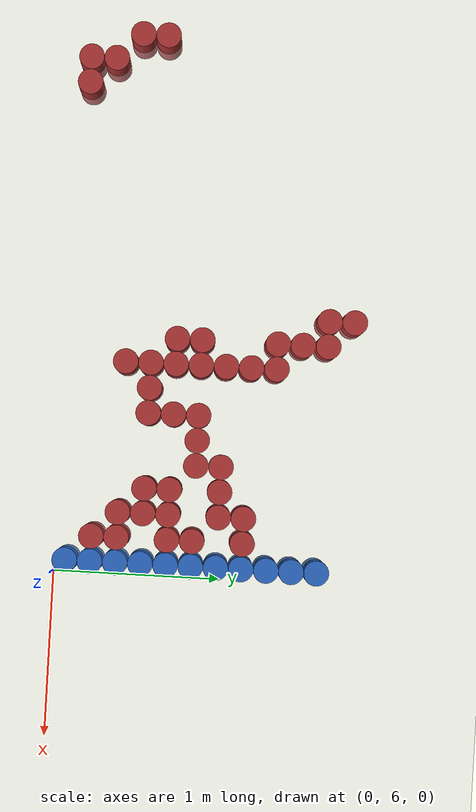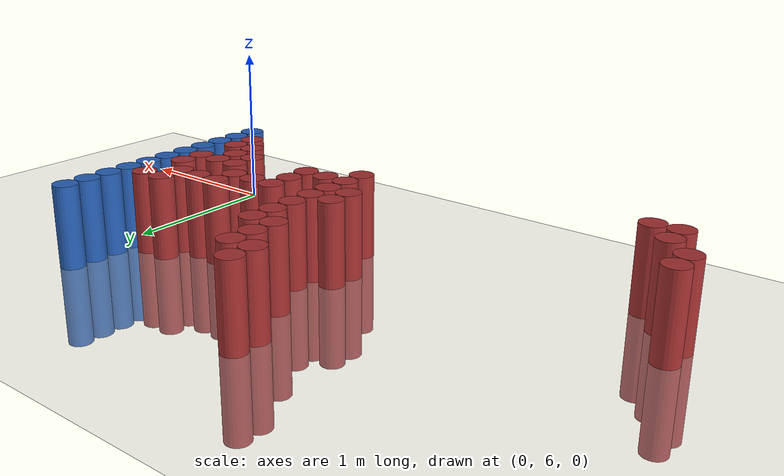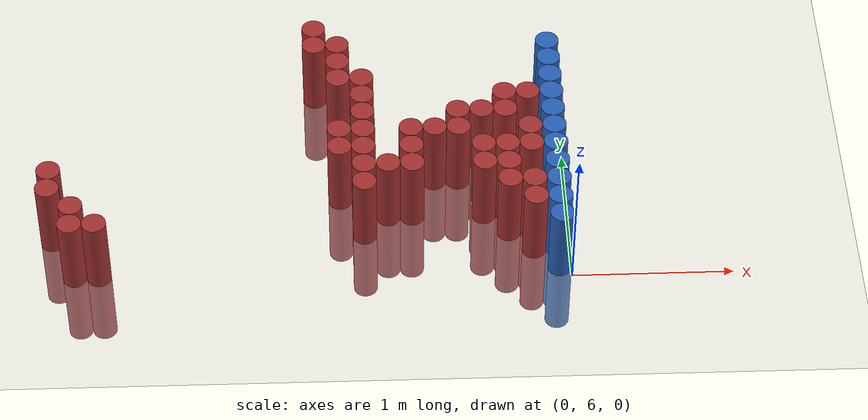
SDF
<sdf version="1.6">
 <world name="default">
  <model name="ground_plane">
   <static>1</static>
   <link name="link">
    <collision name="collision">
     <geometry><plane><normal>0 0 1</normal><size>100 100</size></plane></geometry>
     <surface><friction><ode><mu>100</mu><mu2>50</mu2></ode></friction></surface>
    </collision>
    <visual name="visual">
     <cast_shadows>0</cast_shadows>
     <geometry><plane><normal>0 0 1</normal><size>100 100</size></plane></geometry>
     <material>
      <script><uri>file://media/materials/scripts/gazebo.material</uri><name>Gazebo/Grey</name></script>
     </material>
    </visual>
   </link>
  </model>
  <model name="unit_cylinder_172">
   <static>1</static>
   <pose>-3.225000 6.375000 0.000000 0.000000 0.000000 0.000000</pose>
   <link name="link">
    <inertial>
     <mass>1</mass>
     <inertia><ixx>0.145833</ixx><ixy>0</ixy><ixz>0</ixz><iyy>0.145833</iyy><iyz>0</iyz><izz>0.125</izz></inertia>
    </inertial>
    <collision name="collision">
     <geometry><cylinder><radius>0.075000</radius><length>1</length></cylinder></geometry>
    </collision>
    <visual name="visual">
     <geometry><cylinder><radius>0.075000</radius><length>1</length></cylinder></geometry>
     <material>
      <ambient>0.648000 0.192000 0.192000 1</ambient>
      <diffuse>0.648000 0.192000 0.192000 1</diffuse>
     </material>
     <material>
      <script><name>Gazebo/Grey</name><uri>file://media/materials/scripts/gazebo.material</uri></script>
     </material>
    </visual>
   </link>
  </model>
  <model name="unit_cylinder_173">
   <static>1</static>
   <pose>-3.225000 6.525000 0.000000 0.000000 0.000000 0.000000</pose>
   <link name="link">
    <inertial>
     <mass>1</mass>
     <inertia><ixx>0.145833</ixx><ixy>0</ixy><ixz>0</ixz><iyy>0.145833</iyy><iyz>0</iyz><izz>0.125</izz></inertia>
    </inertial>
    <collision name="collision">
     <geometry><cylinder><radius>0.075000</radius><length>1</length></cylinder></geometry>
    </collision>
    <visual name="visual">
     <geometry><cylinder><radius>0.075000</radius><length>1</length></cylinder></geometry>
     <material>
      <ambient>0.648000 0.192000 0.192000 1</ambient>
      <diffuse>0.648000 0.192000 0.192000 1</diffuse>
     </material>
     <material>
      <script><name>Gazebo/Grey</name><uri>file://media/materials/scripts/gazebo.material</uri></script>
     </material>
    </visual>
   </link>
  </model>
  <model name="unit_cylinder_177">
   <static>1</static>
   <pose>-3.075000 6.075000 0.000000 0.000000 0.000000 0.000000</pose>
   <link name="link">
    <inertial>
     <mass>1</mass>
     <inertia><ixx>0.145833</ixx><ixy>0</ixy><ixz>0</ixz><iyy>0.145833</iyy><iyz>0</iyz><izz>0.125</izz></inertia>
    </inertial>
    <collision name="collision">
     <geometry><cylinder><radius>0.075000</radius><length>1</length></cylinder></geometry>
    </collision>
    <visual name="visual">
     <geometry><cylinder><radius>0.075000</radius><length>1</length></cylinder></geometry>
     <material>
      <ambient>0.648000 0.192000 0.192000 1</ambient>
      <diffuse>0.648000 0.192000 0.192000 1</diffuse>
     </material>
     <material>
      <script><name>Gazebo/Grey</name><uri>file://media/materials/scripts/gazebo.material</uri></script>
     </material>
    </visual>
   </link>
  </model>
  <model name="unit_cylinder_178">
   <static>1</static>
   <pose>-3.075000 6.225000 0.000000 0.000000 0.000000 0.000000</pose>
   <link name="link">
    <inertial>
     <mass>1</mass>
     <inertia><ixx>0.145833</ixx><ixy>0</ixy><ixz>0</ixz><iyy>0.145833</iyy><iyz>0</iyz><izz>0.125</izz></inertia>
    </inertial>
    <collision name="collision">
     <geometry><cylinder><radius>0.075000</radius><length>1</length></cylinder></geometry>
    </collision>
    <visual name="visual">
     <geometry><cylinder><radius>0.075000</radius><length>1</length></cylinder></geometry>
     <material>
      <ambient>0.648000 0.192000 0.192000 1</ambient>
      <diffuse>0.648000 0.192000 0.192000 1</diffuse>
     </material>
     <material>
      <script><name>Gazebo/Grey</name><uri>file://media/materials/scripts/gazebo.material</uri></script>
     </material>
    </visual>
   </link>
  </model>
  <model name="unit_cylinder_179">
   <static>1</static>
   <pose>-2.925000 6.075000 0.000000 0.000000 0.000000 0.000000</pose>
   <link name="link">
    <inertial>
     <mass>1</mass>
     <inertia><ixx>0.145833</ixx><ixy>0</ixy><ixz>0</ixz><iyy>0.145833</iyy><iyz>0</iyz><izz>0.125</izz></inertia>
    </inertial>
    <collision name="collision">
     <geometry><cylinder><radius>0.075000</radius><length>1</length></cylinder></geometry>
    </collision>
    <visual name="visual">
     <geometry><cylinder><radius>0.075000</radius><length>1</length></cylinder></geometry>
     <material>
      <ambient>0.648000 0.192000 0.192000 1</ambient>
      <diffuse>0.648000 0.192000 0.192000 1</diffuse>
     </material>
     <material>
      <script><name>Gazebo/Grey</name><uri>file://media/materials/scripts/gazebo.material</uri></script>
     </material>
    </visual>
   </link>
  </model>
  <model name="unit_cylinder_200">
   <static>1</static>
   <pose>-1.575000 7.575000 0.000000 0.000000 0.000000 0.000000</pose>
   <link name="link">
    <inertial>
     <mass>1</mass>
     <inertia><ixx>0.145833</ixx><ixy>0</ixy><ixz>0</ixz><iyy>0.145833</iyy><iyz>0</iyz><izz>0.125</izz></inertia>
    </inertial>
    <collision name="collision">
     <geometry><cylinder><radius>0.075000</radius><length>1</length></cylinder></geometry>
    </collision>
    <visual name="visual">
     <geometry><cylinder><radius>0.075000</radius><length>1</length></cylinder></geometry>
     <material>
      <ambient>0.648000 0.192000 0.192000 1</ambient>
      <diffuse>0.648000 0.192000 0.192000 1</diffuse>
     </material>
     <material>
      <script><name>Gazebo/Grey</name><uri>file://media/materials/scripts/gazebo.material</uri></script>
     </material>
    </visual>
   </link>
  </model>
  <model name="unit_cylinder_201">
   <static>1</static>
   <pose>-1.575000 7.725000 0.000000 0.000000 0.000000 0.000000</pose>
   <link name="link">
    <inertial>
     <mass>1</mass>
     <inertia><ixx>0.145833</ixx><ixy>0</ixy><ixz>0</ixz><iyy>0.145833</iyy><iyz>0</iyz><izz>0.125</izz></inertia>
    </inertial>
    <collision name="collision">
     <geometry><cylinder><radius>0.075000</radius><length>1</length></cylinder></geometry>
    </collision>
    <visual name="visual">
     <geometry><cylinder><radius>0.075000</radius><length>1</length></cylinder></geometry>
     <material>
      <ambient>0.648000 0.192000 0.192000 1</ambient>
      <diffuse>0.648000 0.192000 0.192000 1</diffuse>
     </material>
     <material>
      <script><name>Gazebo/Grey</name><uri>file://media/materials/scripts/gazebo.material</uri></script>
     </material>
    </visual>
   </link>
  </model>
  <model name="unit_cylinder_206">
   <static>1</static>
   <pose>-1.425000 6.675000 0.000000 0.000000 0.000000 0.000000</pose>
   <link name="link">
    <inertial>
     <mass>1</mass>
     <inertia><ixx>0.145833</ixx><ixy>0</ixy><ixz>0</ixz><iyy>0.145833</iyy><iyz>0</iyz><izz>0.125</izz></inertia>
    </inertial>
    <collision name="collision">
     <geometry><cylinder><radius>0.075000</radius><length>1</length></cylinder></geometry>
    </collision>
    <visual name="visual">
     <geometry><cylinder><radius>0.075000</radius><length>1</length></cylinder></geometry>
     <material>
      <ambient>0.648000 0.192000 0.192000 1</ambient>
      <diffuse>0.648000 0.192000 0.192000 1</diffuse>
     </material>
     <material>
      <script><name>Gazebo/Grey</name><uri>file://media/materials/scripts/gazebo.material</uri></script>
     </material>
    </visual>
   </link>
  </model>
  <model name="unit_cylinder_207">
   <static>1</static>
   <pose>-1.425000 6.825000 0.000000 0.000000 0.000000 0.000000</pose>
   <link name="link">
    <inertial>
     <mass>1</mass>
     <inertia><ixx>0.145833</ixx><ixy>0</ixy><ixz>0</ixz><iyy>0.145833</iyy><iyz>0</iyz><izz>0.125</izz></inertia>
    </inertial>
    <collision name="collision">
     <geometry><cylinder><radius>0.075000</radius><length>1</length></cylinder></geometry>
    </collision>
    <visual name="visual">
     <geometry><cylinder><radius>0.075000</radius><length>1</length></cylinder></geometry>
     <material>
      <ambient>0.648000 0.192000 0.192000 1</ambient>
      <diffuse>0.648000 0.192000 0.192000 1</diffuse>
     </material>
     <material>
      <script><name>Gazebo/Grey</name><uri>file://media/materials/scripts/gazebo.material</uri></script>
     </material>
    </visual>
   </link>
  </model>
  <model name="unit_cylinder_208">
   <static>1</static>
   <pose>-1.425000 7.275000 0.000000 0.000000 0.000000 0.000000</pose>
   <link name="link">
    <inertial>
     <mass>1</mass>
     <inertia><ixx>0.145833</ixx><ixy>0</ixy><ixz>0</ixz><iyy>0.145833</iyy><iyz>0</iyz><izz>0.125</izz></inertia>
    </inertial>
    <collision name="collision">
     <geometry><cylinder><radius>0.075000</radius><length>1</length></cylinder></geometry>
    </collision>
    <visual name="visual">
     <geometry><cylinder><radius>0.075000</radius><length>1</length></cylinder></geometry>
     <material>
      <ambient>0.648000 0.192000 0.192000 1</ambient>
      <diffuse>0.648000 0.192000 0.192000 1</diffuse>
     </material>
     <material>
      <script><name>Gazebo/Grey</name><uri>file://media/materials/scripts/gazebo.material</uri></script>
     </material>
    </visual>
   </link>
  </model>
  <model name="unit_cylinder_209">
   <static>1</static>
   <pose>-1.425000 7.425000 0.000000 0.000000 0.000000 0.000000</pose>
   <link name="link">
    <inertial>
     <mass>1</mass>
     <inertia><ixx>0.145833</ixx><ixy>0</ixy><ixz>0</ixz><iyy>0.145833</iyy><iyz>0</iyz><izz>0.125</izz></inertia>
    </inertial>
    <collision name="collision">
     <geometry><cylinder><radius>0.075000</radius><length>1</length></cylinder></geometry>
    </collision>
    <visual name="visual">
     <geometry><cylinder><radius>0.075000</radius><length>1</length></cylinder></geometry>
     <material>
      <ambient>0.648000 0.192000 0.192000 1</ambient>
      <diffuse>0.648000 0.192000 0.192000 1</diffuse>
     </material>
     <material>
      <script><name>Gazebo/Grey</name><uri>file://media/materials/scripts/gazebo.material</uri></script>
     </material>
    </visual>
   </link>
  </model>
  <model name="unit_cylinder_210">
   <static>1</static>
   <pose>-1.425000 7.575000 0.000000 0.000000 0.000000 0.000000</pose>
   <link name="link">
    <inertial>
     <mass>1</mass>
     <inertia><ixx>0.145833</ixx><ixy>0</ixy><ixz>0</ixz><iyy>0.145833</iyy><iyz>0</iyz><izz>0.125</izz></inertia>
    </inertial>
    <collision name="collision">
     <geometry><cylinder><radius>0.075000</radius><length>1</length></cylinder></geometry>
    </collision>
    <visual name="visual">
     <geometry><cylinder><radius>0.075000</radius><length>1</length></cylinder></geometry>
     <material>
      <ambient>0.648000 0.192000 0.192000 1</ambient>
      <diffuse>0.648000 0.192000 0.192000 1</diffuse>
     </material>
     <material>
      <script><name>Gazebo/Grey</name><uri>file://media/materials/scripts/gazebo.material</uri></script>
     </material>
    </visual>
   </link>
  </model>
  <model name="unit_cylinder_217">
   <static>1</static>
   <pose>-1.275000 6.375000 0.000000 0.000000 0.000000 0.000000</pose>
   <link name="link">
    <inertial>
     <mass>1</mass>
     <inertia><ixx>0.145833</ixx><ixy>0</ixy><ixz>0</ixz><iyy>0.145833</iyy><iyz>0</iyz><izz>0.125</izz></inertia>
    </inertial>
    <collision name="collision">
     <geometry><cylinder><radius>0.075000</radius><length>1</length></cylinder></geometry>
    </collision>
    <visual name="visual">
     <geometry><cylinder><radius>0.075000</radius><length>1</length></cylinder></geometry>
     <material>
      <ambient>0.648000 0.192000 0.192000 1</ambient>
      <diffuse>0.648000 0.192000 0.192000 1</diffuse>
     </material>
     <material>
      <script><name>Gazebo/Grey</name><uri>file://media/materials/scripts/gazebo.material</uri></script>
     </material>
    </visual>
   </link>
  </model>
  <model name="unit_cylinder_218">
   <static>1</static>
   <pose>-1.275000 6.525000 0.000000 0.000000 0.000000 0.000000</pose>
   <link name="link">
    <inertial>
     <mass>1</mass>
     <inertia><ixx>0.145833</ixx><ixy>0</ixy><ixz>0</ixz><iyy>0.145833</iyy><iyz>0</iyz><izz>0.125</izz></inertia>
    </inertial>
    <collision name="collision">
     <geometry><cylinder><radius>0.075000</radius><length>1</length></cylinder></geometry>
    </collision>
    <visual name="visual">
     <geometry><cylinder><radius>0.075000</radius><length>1</length></cylinder></geometry>
     <material>
      <ambient>0.648000 0.192000 0.192000 1</ambient>
      <diffuse>0.648000 0.192000 0.192000 1</diffuse>
     </material>
     <material>
      <script><name>Gazebo/Grey</name><uri>file://media/materials/scripts/gazebo.material</uri></script>
     </material>
    </visual>
   </link>
  </model>
  <model name="unit_cylinder_219">
   <static>1</static>
   <pose>-1.275000 6.675000 0.000000 0.000000 0.000000 0.000000</pose>
   <link name="link">
    <inertial>
     <mass>1</mass>
     <inertia><ixx>0.145833</ixx><ixy>0</ixy><ixz>0</ixz><iyy>0.145833</iyy><iyz>0</iyz><izz>0.125</izz></inertia>
    </inertial>
    <collision name="collision">
     <geometry><cylinder><radius>0.075000</radius><length>1</length></cylinder></geometry>
    </collision>
    <visual name="visual">
     <geometry><cylinder><radius>0.075000</radius><length>1</length></cylinder></geometry>
     <material>
      <ambient>0.648000 0.192000 0.192000 1</ambient>
      <diffuse>0.648000 0.192000 0.192000 1</diffuse>
     </material>
     <material>
      <script><name>Gazebo/Grey</name><uri>file://media/materials/scripts/gazebo.material</uri></script>
     </material>
    </visual>
   </link>
  </model>
  <model name="unit_cylinder_220">
   <static>1</static>
   <pose>-1.275000 6.825000 0.000000 0.000000 0.000000 0.000000</pose>
   <link name="link">
    <inertial>
     <mass>1</mass>
     <inertia><ixx>0.145833</ixx><ixy>0</ixy><ixz>0</ixz><iyy>0.145833</iyy><iyz>0</iyz><izz>0.125</izz></inertia>
    </inertial>
    <collision name="collision">
     <geometry><cylinder><radius>0.075000</radius><length>1</length></cylinder></geometry>
    </collision>
    <visual name="visual">
     <geometry><cylinder><radius>0.075000</radius><length>1</length></cylinder></geometry>
     <material>
      <ambient>0.648000 0.192000 0.192000 1</ambient>
      <diffuse>0.648000 0.192000 0.192000 1</diffuse>
     </material>
     <material>
      <script><name>Gazebo/Grey</name><uri>file://media/materials/scripts/gazebo.material</uri></script>
     </material>
    </visual>
   </link>
  </model>
  <model name="unit_cylinder_221">
   <static>1</static>
   <pose>-1.275000 6.975000 0.000000 0.000000 0.000000 0.000000</pose>
   <link name="link">
    <inertial>
     <mass>1</mass>
     <inertia><ixx>0.145833</ixx><ixy>0</ixy><ixz>0</ixz><iyy>0.145833</iyy><iyz>0</iyz><izz>0.125</izz></inertia>
    </inertial>
    <collision name="collision">
     <geometry><cylinder><radius>0.075000</radius><length>1</length></cylinder></geometry>
    </collision>
    <visual name="visual">
     <geometry><cylinder><radius>0.075000</radius><length>1</length></cylinder></geometry>
     <material>
      <ambient>0.648000 0.192000 0.192000 1</ambient>
      <diffuse>0.648000 0.192000 0.192000 1</diffuse>
     </material>
     <material>
      <script><name>Gazebo/Grey</name><uri>file://media/materials/scripts/gazebo.material</uri></script>
     </material>
    </visual>
   </link>
  </model>
  <model name="unit_cylinder_222">
   <static>1</static>
   <pose>-1.275000 7.125000 0.000000 0.000000 0.000000 0.000000</pose>
   <link name="link">
    <inertial>
     <mass>1</mass>
     <inertia><ixx>0.145833</ixx><ixy>0</ixy><ixz>0</ixz><iyy>0.145833</iyy><iyz>0</iyz><izz>0.125</izz></inertia>
    </inertial>
    <collision name="collision">
     <geometry><cylinder><radius>0.075000</radius><length>1</length></cylinder></geometry>
    </collision>
    <visual name="visual">
     <geometry><cylinder><radius>0.075000</radius><length>1</length></cylinder></geometry>
     <material>
      <ambient>0.648000 0.192000 0.192000 1</ambient>
      <diffuse>0.648000 0.192000 0.192000 1</diffuse>
     </material>
     <material>
      <script><name>Gazebo/Grey</name><uri>file://media/materials/scripts/gazebo.material</uri></script>
     </material>
    </visual>
   </link>
  </model>
  <model name="unit_cylinder_223">
   <static>1</static>
   <pose>-1.275000 7.275000 0.000000 0.000000 0.000000 0.000000</pose>
   <link name="link">
    <inertial>
     <mass>1</mass>
     <inertia><ixx>0.145833</ixx><ixy>0</ixy><ixz>0</ixz><iyy>0.145833</iyy><iyz>0</iyz><izz>0.125</izz></inertia>
    </inertial>
    <collision name="collision">
     <geometry><cylinder><radius>0.075000</radius><length>1</length></cylinder></geometry>
    </collision>
    <visual name="visual">
     <geometry><cylinder><radius>0.075000</radius><length>1</length></cylinder></geometry>
     <material>
      <ambient>0.648000 0.192000 0.192000 1</ambient>
      <diffuse>0.648000 0.192000 0.192000 1</diffuse>
     </material>
     <material>
      <script><name>Gazebo/Grey</name><uri>file://media/materials/scripts/gazebo.material</uri></script>
     </material>
    </visual>
   </link>
  </model>
  <model name="unit_cylinder_229">
   <static>1</static>
   <pose>-1.125000 6.525000 0.000000 0.000000 0.000000 0.000000</pose>
   <link name="link">
    <inertial>
     <mass>1</mass>
     <inertia><ixx>0.145833</ixx><ixy>0</ixy><ixz>0</ixz><iyy>0.145833</iyy><iyz>0</iyz><izz>0.125</izz></inertia>
    </inertial>
    <collision name="collision">
     <geometry><cylinder><radius>0.075000</radius><length>1</length></cylinder></geometry>
    </collision>
    <visual name="visual">
     <geometry><cylinder><radius>0.075000</radius><length>1</length></cylinder></geometry>
     <material>
      <ambient>0.648000 0.192000 0.192000 1</ambient>
      <diffuse>0.648000 0.192000 0.192000 1</diffuse>
     </material>
     <material>
      <script><name>Gazebo/Grey</name><uri>file://media/materials/scripts/gazebo.material</uri></script>
     </material>
    </visual>
   </link>
  </model>
  <model name="unit_cylinder_234">
   <static>1</static>
   <pose>-0.975000 6.525000 0.000000 0.000000 0.000000 0.000000</pose>
   <link name="link">
    <inertial>
     <mass>1</mass>
     <inertia><ixx>0.145833</ixx><ixy>0</ixy><ixz>0</ixz><iyy>0.145833</iyy><iyz>0</iyz><izz>0.125</izz></inertia>
    </inertial>
    <collision name="collision">
     <geometry><cylinder><radius>0.075000</radius><length>1</length></cylinder></geometry>
    </collision>
    <visual name="visual">
     <geometry><cylinder><radius>0.075000</radius><length>1</length></cylinder></geometry>
     <material>
      <ambient>0.648000 0.192000 0.192000 1</ambient>
      <diffuse>0.648000 0.192000 0.192000 1</diffuse>
     </material>
     <material>
      <script><name>Gazebo/Grey</name><uri>file://media/materials/scripts/gazebo.material</uri></script>
     </material>
    </visual>
   </link>
  </model>
  <model name="unit_cylinder_235">
   <static>1</static>
   <pose>-0.975000 6.675000 0.000000 0.000000 0.000000 0.000000</pose>
   <link name="link">
    <inertial>
     <mass>1</mass>
     <inertia><ixx>0.145833</ixx><ixy>0</ixy><ixz>0</ixz><iyy>0.145833</iyy><iyz>0</iyz><izz>0.125</izz></inertia>
    </inertial>
    <collision name="collision">
     <geometry><cylinder><radius>0.075000</radius><length>1</length></cylinder></geometry>
    </collision>
    <visual name="visual">
     <geometry><cylinder><radius>0.075000</radius><length>1</length></cylinder></geometry>
     <material>
      <ambient>0.648000 0.192000 0.192000 1</ambient>
      <diffuse>0.648000 0.192000 0.192000 1</diffuse>
     </material>
     <material>
      <script><name>Gazebo/Grey</name><uri>file://media/materials/scripts/gazebo.material</uri></script>
     </material>
    </visual>
   </link>
  </model>
  <model name="unit_cylinder_236">
   <static>1</static>
   <pose>-0.975000 6.825000 0.000000 0.000000 0.000000 0.000000</pose>
   <link name="link">
    <inertial>
     <mass>1</mass>
     <inertia><ixx>0.145833</ixx><ixy>0</ixy><ixz>0</ixz><iyy>0.145833</iyy><iyz>0</iyz><izz>0.125</izz></inertia>
    </inertial>
    <collision name="collision">
     <geometry><cylinder><radius>0.075000</radius><length>1</length></cylinder></geometry>
    </collision>
    <visual name="visual">
     <geometry><cylinder><radius>0.075000</radius><length>1</length></cylinder></geometry>
     <material>
      <ambient>0.648000 0.192000 0.192000 1</ambient>
      <diffuse>0.648000 0.192000 0.192000 1</diffuse>
     </material>
     <material>
      <script><name>Gazebo/Grey</name><uri>file://media/materials/scripts/gazebo.material</uri></script>
     </material>
    </visual>
   </link>
  </model>
  <model name="unit_cylinder_241">
   <static>1</static>
   <pose>-0.825000 6.825000 0.000000 0.000000 0.000000 0.000000</pose>
   <link name="link">
    <inertial>
     <mass>1</mass>
     <inertia><ixx>0.145833</ixx><ixy>0</ixy><ixz>0</ixz><iyy>0.145833</iyy><iyz>0</iyz><izz>0.125</izz></inertia>
    </inertial>
    <collision name="collision">
     <geometry><cylinder><radius>0.075000</radius><length>1</length></cylinder></geometry>
    </collision>
    <visual name="visual">
     <geometry><cylinder><radius>0.075000</radius><length>1</length></cylinder></geometry>
     <material>
      <ambient>0.648000 0.192000 0.192000 1</ambient>
      <diffuse>0.648000 0.192000 0.192000 1</diffuse>
     </material>
     <material>
      <script><name>Gazebo/Grey</name><uri>file://media/materials/scripts/gazebo.material</uri></script>
     </material>
    </visual>
   </link>
  </model>
  <model name="unit_cylinder_247">
   <static>1</static>
   <pose>-0.675000 6.825000 0.000000 0.000000 0.000000 0.000000</pose>
   <link name="link">
    <inertial>
     <mass>1</mass>
     <inertia><ixx>0.145833</ixx><ixy>0</ixy><ixz>0</ixz><iyy>0.145833</iyy><iyz>0</iyz><izz>0.125</izz></inertia>
    </inertial>
    <collision name="collision">
     <geometry><cylinder><radius>0.075000</radius><length>1</length></cylinder></geometry>
    </collision>
    <visual name="visual">
     <geometry><cylinder><radius>0.075000</radius><length>1</length></cylinder></geometry>
     <material>
      <ambient>0.648000 0.192000 0.192000 1</ambient>
      <diffuse>0.648000 0.192000 0.192000 1</diffuse>
     </material>
     <material>
      <script><name>Gazebo/Grey</name><uri>file://media/materials/scripts/gazebo.material</uri></script>
     </material>
    </visual>
   </link>
  </model>
  <model name="unit_cylinder_248">
   <static>1</static>
   <pose>-0.675000 6.975000 0.000000 0.000000 0.000000 0.000000</pose>
   <link name="link">
    <inertial>
     <mass>1</mass>
     <inertia><ixx>0.145833</ixx><ixy>0</ixy><ixz>0</ixz><iyy>0.145833</iyy><iyz>0</iyz><izz>0.125</izz></inertia>
    </inertial>
    <collision name="collision">
     <geometry><cylinder><radius>0.075000</radius><length>1</length></cylinder></geometry>
    </collision>
    <visual name="visual">
     <geometry><cylinder><radius>0.075000</radius><length>1</length></cylinder></geometry>
     <material>
      <ambient>0.648000 0.192000 0.192000 1</ambient>
      <diffuse>0.648000 0.192000 0.192000 1</diffuse>
     </material>
     <material>
      <script><name>Gazebo/Grey</name><uri>file://media/materials/scripts/gazebo.material</uri></script>
     </material>
    </visual>
   </link>
  </model>
  <model name="unit_cylinder_255">
   <static>1</static>
   <pose>-0.525000 6.525000 0.000000 0.000000 0.000000 0.000000</pose>
   <link name="link">
    <inertial>
     <mass>1</mass>
     <inertia><ixx>0.145833</ixx><ixy>0</ixy><ixz>0</ixz><iyy>0.145833</iyy><iyz>0</iyz><izz>0.125</izz></inertia>
    </inertial>
    <collision name="collision">
     <geometry><cylinder><radius>0.075000</radius><length>1</length></cylinder></geometry>
    </collision>
    <visual name="visual">
     <geometry><cylinder><radius>0.075000</radius><length>1</length></cylinder></geometry>
     <material>
      <ambient>0.648000 0.192000 0.192000 1</ambient>
      <diffuse>0.648000 0.192000 0.192000 1</diffuse>
     </material>
     <material>
      <script><name>Gazebo/Grey</name><uri>file://media/materials/scripts/gazebo.material</uri></script>
     </material>
    </visual>
   </link>
  </model>
  <model name="unit_cylinder_256">
   <static>1</static>
   <pose>-0.525000 6.675000 0.000000 0.000000 0.000000 0.000000</pose>
   <link name="link">
    <inertial>
     <mass>1</mass>
     <inertia><ixx>0.145833</ixx><ixy>0</ixy><ixz>0</ixz><iyy>0.145833</iyy><iyz>0</iyz><izz>0.125</izz></inertia>
    </inertial>
    <collision name="collision">
     <geometry><cylinder><radius>0.075000</radius><length>1</length></cylinder></geometry>
    </collision>
    <visual name="visual">
     <geometry><cylinder><radius>0.075000</radius><length>1</length></cylinder></geometry>
     <material>
      <ambient>0.648000 0.192000 0.192000 1</ambient>
      <diffuse>0.648000 0.192000 0.192000 1</diffuse>
     </material>
     <material>
      <script><name>Gazebo/Grey</name><uri>file://media/materials/scripts/gazebo.material</uri></script>
     </material>
    </visual>
   </link>
  </model>
  <model name="unit_cylinder_257">
   <static>1</static>
   <pose>-0.525000 6.975000 0.000000 0.000000 0.000000 0.000000</pose>
   <link name="link">
    <inertial>
     <mass>1</mass>
     <inertia><ixx>0.145833</ixx><ixy>0</ixy><ixz>0</ixz><iyy>0.145833</iyy><iyz>0</iyz><izz>0.125</izz></inertia>
    </inertial>
    <collision name="collision">
     <geometry><cylinder><radius>0.075000</radius><length>1</length></cylinder></geometry>
    </collision>
    <visual name="visual">
     <geometry><cylinder><radius>0.075000</radius><length>1</length></cylinder></geometry>
     <material>
      <ambient>0.648000 0.192000 0.192000 1</ambient>
      <diffuse>0.648000 0.192000 0.192000 1</diffuse>
     </material>
     <material>
      <script><name>Gazebo/Grey</name><uri>file://media/materials/scripts/gazebo.material</uri></script>
     </material>
    </visual>
   </link>
  </model>
  <model name="unit_cylinder_261">
   <static>1</static>
   <pose>-0.375000 6.375000 0.000000 0.000000 0.000000 0.000000</pose>
   <link name="link">
    <inertial>
     <mass>1</mass>
     <inertia><ixx>0.145833</ixx><ixy>0</ixy><ixz>0</ixz><iyy>0.145833</iyy><iyz>0</iyz><izz>0.125</izz></inertia>
    </inertial>
    <collision name="collision">
     <geometry><cylinder><radius>0.075000</radius><length>1</length></cylinder></geometry>
    </collision>
    <visual name="visual">
     <geometry><cylinder><radius>0.075000</radius><length>1</length></cylinder></geometry>
     <material>
      <ambient>0.648000 0.192000 0.192000 1</ambient>
      <diffuse>0.648000 0.192000 0.192000 1</diffuse>
     </material>
     <material>
      <script><name>Gazebo/Grey</name><uri>file://media/materials/scripts/gazebo.material</uri></script>
     </material>
    </visual>
   </link>
  </model>
  <model name="unit_cylinder_262">
   <static>1</static>
   <pose>-0.375000 6.525000 0.000000 0.000000 0.000000 0.000000</pose>
   <link name="link">
    <inertial>
     <mass>1</mass>
     <inertia><ixx>0.145833</ixx><ixy>0</ixy><ixz>0</ixz><iyy>0.145833</iyy><iyz>0</iyz><izz>0.125</izz></inertia>
    </inertial>
    <collision name="collision">
     <geometry><cylinder><radius>0.075000</radius><length>1</length></cylinder></geometry>
    </collision>
    <visual name="visual">
     <geometry><cylinder><radius>0.075000</radius><length>1</length></cylinder></geometry>
     <material>
      <ambient>0.648000 0.192000 0.192000 1</ambient>
      <diffuse>0.648000 0.192000 0.192000 1</diffuse>
     </material>
     <material>
      <script><name>Gazebo/Grey</name><uri>file://media/materials/scripts/gazebo.material</uri></script>
     </material>
    </visual>
   </link>
  </model>
  <model name="unit_cylinder_263">
   <static>1</static>
   <pose>-0.375000 6.675000 0.000000 0.000000 0.000000 0.000000</pose>
   <link name="link">
    <inertial>
     <mass>1</mass>
     <inertia><ixx>0.145833</ixx><ixy>0</ixy><ixz>0</ixz><iyy>0.145833</iyy><iyz>0</iyz><izz>0.125</izz></inertia>
    </inertial>
    <collision name="collision">
     <geometry><cylinder><radius>0.075000</radius><length>1</length></cylinder></geometry>
    </collision>
    <visual name="visual">
     <geometry><cylinder><radius>0.075000</radius><length>1</length></cylinder></geometry>
     <material>
      <ambient>0.648000 0.192000 0.192000 1</ambient>
      <diffuse>0.648000 0.192000 0.192000 1</diffuse>
     </material>
     <material>
      <script><name>Gazebo/Grey</name><uri>file://media/materials/scripts/gazebo.material</uri></script>
     </material>
    </visual>
   </link>
  </model>
  <model name="unit_cylinder_264">
   <static>1</static>
   <pose>-0.375000 6.975000 0.000000 0.000000 0.000000 0.000000</pose>
   <link name="link">
    <inertial>
     <mass>1</mass>
     <inertia><ixx>0.145833</ixx><ixy>0</ixy><ixz>0</ixz><iyy>0.145833</iyy><iyz>0</iyz><izz>0.125</izz></inertia>
    </inertial>
    <collision name="collision">
     <geometry><cylinder><radius>0.075000</radius><length>1</length></cylinder></geometry>
    </collision>
    <visual name="visual">
     <geometry><cylinder><radius>0.075000</radius><length>1</length></cylinder></geometry>
     <material>
      <ambient>0.648000 0.192000 0.192000 1</ambient>
      <diffuse>0.648000 0.192000 0.192000 1</diffuse>
     </material>
     <material>
      <script><name>Gazebo/Grey</name><uri>file://media/materials/scripts/gazebo.material</uri></script>
     </material>
    </visual>
   </link>
  </model>
  <model name="unit_cylinder_265">
   <static>1</static>
   <pose>-0.375000 7.125000 0.000000 0.000000 0.000000 0.000000</pose>
   <link name="link">
    <inertial>
     <mass>1</mass>
     <inertia><ixx>0.145833</ixx><ixy>0</ixy><ixz>0</ixz><iyy>0.145833</iyy><iyz>0</iyz><izz>0.125</izz></inertia>
    </inertial>
    <collision name="collision">
     <geometry><cylinder><radius>0.075000</radius><length>1</length></cylinder></geometry>
    </collision>
    <visual name="visual">
     <geometry><cylinder><radius>0.075000</radius><length>1</length></cylinder></geometry>
     <material>
      <ambient>0.648000 0.192000 0.192000 1</ambient>
      <diffuse>0.648000 0.192000 0.192000 1</diffuse>
     </material>
     <material>
      <script><name>Gazebo/Grey</name><uri>file://media/materials/scripts/gazebo.material</uri></script>
     </material>
    </visual>
   </link>
  </model>
  <model name="unit_cylinder_268">
   <static>1</static>
   <pose>-0.225000 6.225000 0.000000 0.000000 0.000000 0.000000</pose>
   <link name="link">
    <inertial>
     <mass>1</mass>
     <inertia><ixx>0.145833</ixx><ixy>0</ixy><ixz>0</ixz><iyy>0.145833</iyy><iyz>0</iyz><izz>0.125</izz></inertia>
    </inertial>
    <collision name="collision">
     <geometry><cylinder><radius>0.075000</radius><length>1</length></cylinder></geometry>
    </collision>
    <visual name="visual">
     <geometry><cylinder><radius>0.075000</radius><length>1</length></cylinder></geometry>
     <material>
      <ambient>0.648000 0.192000 0.192000 1</ambient>
      <diffuse>0.648000 0.192000 0.192000 1</diffuse>
     </material>
     <material>
      <script><name>Gazebo/Grey</name><uri>file://media/materials/scripts/gazebo.material</uri></script>
     </material>
    </visual>
   </link>
  </model>
  <model name="unit_cylinder_269">
   <static>1</static>
   <pose>-0.225000 6.375000 0.000000 0.000000 0.000000 0.000000</pose>
   <link name="link">
    <inertial>
     <mass>1</mass>
     <inertia><ixx>0.145833</ixx><ixy>0</ixy><ixz>0</ixz><iyy>0.145833</iyy><iyz>0</iyz><izz>0.125</izz></inertia>
    </inertial>
    <collision name="collision">
     <geometry><cylinder><radius>0.075000</radius><length>1</length></cylinder></geometry>
    </collision>
    <visual name="visual">
     <geometry><cylinder><radius>0.075000</radius><length>1</length></cylinder></geometry>
     <material>
      <ambient>0.648000 0.192000 0.192000 1</ambient>
      <diffuse>0.648000 0.192000 0.192000 1</diffuse>
     </material>
     <material>
      <script><name>Gazebo/Grey</name><uri>file://media/materials/scripts/gazebo.material</uri></script>
     </material>
    </visual>
   </link>
  </model>
  <model name="unit_cylinder_270">
   <static>1</static>
   <pose>-0.225000 6.675000 0.000000 0.000000 0.000000 0.000000</pose>
   <link name="link">
    <inertial>
     <mass>1</mass>
     <inertia><ixx>0.145833</ixx><ixy>0</ixy><ixz>0</ixz><iyy>0.145833</iyy><iyz>0</iyz><izz>0.125</izz></inertia>
    </inertial>
    <collision name="collision">
     <geometry><cylinder><radius>0.075000</radius><length>1</length></cylinder></geometry>
    </collision>
    <visual name="visual">
     <geometry><cylinder><radius>0.075000</radius><length>1</length></cylinder></geometry>
     <material>
      <ambient>0.648000 0.192000 0.192000 1</ambient>
      <diffuse>0.648000 0.192000 0.192000 1</diffuse>
     </material>
     <material>
      <script><name>Gazebo/Grey</name><uri>file://media/materials/scripts/gazebo.material</uri></script>
     </material>
    </visual>
   </link>
  </model>
  <model name="unit_cylinder_271">
   <static>1</static>
   <pose>-0.225000 6.825000 0.000000 0.000000 0.000000 0.000000</pose>
   <link name="link">
    <inertial>
     <mass>1</mass>
     <inertia><ixx>0.145833</ixx><ixy>0</ixy><ixz>0</ixz><iyy>0.145833</iyy><iyz>0</iyz><izz>0.125</izz></inertia>
    </inertial>
    <collision name="collision">
     <geometry><cylinder><radius>0.075000</radius><length>1</length></cylinder></geometry>
    </collision>
    <visual name="visual">
     <geometry><cylinder><radius>0.075000</radius><length>1</length></cylinder></geometry>
     <material>
      <ambient>0.648000 0.192000 0.192000 1</ambient>
      <diffuse>0.648000 0.192000 0.192000 1</diffuse>
     </material>
     <material>
      <script><name>Gazebo/Grey</name><uri>file://media/materials/scripts/gazebo.material</uri></script>
     </material>
    </visual>
   </link>
  </model>
  <model name="unit_cylinder_272">
   <static>1</static>
   <pose>-0.225000 7.125000 0.000000 0.000000 0.000000 0.000000</pose>
   <link name="link">
    <inertial>
     <mass>1</mass>
     <inertia><ixx>0.145833</ixx><ixy>0</ixy><ixz>0</ixz><iyy>0.145833</iyy><iyz>0</iyz><izz>0.125</izz></inertia>
    </inertial>
    <collision name="collision">
     <geometry><cylinder><radius>0.075000</radius><length>1</length></cylinder></geometry>
    </collision>
    <visual name="visual">
     <geometry><cylinder><radius>0.075000</radius><length>1</length></cylinder></geometry>
     <material>
      <ambient>0.648000 0.192000 0.192000 1</ambient>
      <diffuse>0.648000 0.192000 0.192000 1</diffuse>
     </material>
     <material>
      <script><name>Gazebo/Grey</name><uri>file://media/materials/scripts/gazebo.material</uri></script>
     </material>
    </visual>
   </link>
  </model>
  <model name="unit_cylinder_281">
   <static>1</static>
   <pose>-0.075000 6.075000 0.000000 0.000000 0.000000 0.000000</pose>
   <link name="link">
    <inertial>
     <mass>1</mass>
     <inertia><ixx>0.145833</ixx><ixy>0</ixy><ixz>0</ixz><iyy>0.145833</iyy><iyz>0</iyz><izz>0.125</izz></inertia>
    </inertial>
    <collision name="collision">
     <geometry><cylinder><radius>0.075000</radius><length>1</length></cylinder></geometry>
    </collision>
    <visual name="visual">
     <geometry><cylinder><radius>0.075000</radius><length>1</length></cylinder></geometry>
     <material>
      <ambient>0.152000 0.379000 0.720000 1</ambient>
      <diffuse>0.152000 0.379000 0.720000 1</diffuse>
     </material>
     <material>
      <script><name>Gazebo/Grey</name><uri>file://media/materials/scripts/gazebo.material</uri></script>
     </material>
    </visual>
   </link>
  </model>
  <model name="unit_cylinder_282">
   <static>1</static>
   <pose>-0.075000 6.225000 0.000000 0.000000 0.000000 0.000000</pose>
   <link name="link">
    <inertial>
     <mass>1</mass>
     <inertia><ixx>0.145833</ixx><ixy>0</ixy><ixz>0</ixz><iyy>0.145833</iyy><iyz>0</iyz><izz>0.125</izz></inertia>
    </inertial>
    <collision name="collision">
     <geometry><cylinder><radius>0.075000</radius><length>1</length></cylinder></geometry>
    </collision>
    <visual name="visual">
     <geometry><cylinder><radius>0.075000</radius><length>1</length></cylinder></geometry>
     <material>
      <ambient>0.152000 0.379000 0.720000 1</ambient>
      <diffuse>0.152000 0.379000 0.720000 1</diffuse>
     </material>
     <material>
      <script><name>Gazebo/Grey</name><uri>file://media/materials/scripts/gazebo.material</uri></script>
     </material>
    </visual>
   </link>
  </model>
  <model name="unit_cylinder_283">
   <static>1</static>
   <pose>-0.075000 6.375000 0.000000 0.000000 0.000000 0.000000</pose>
   <link name="link">
    <inertial>
     <mass>1</mass>
     <inertia><ixx>0.145833</ixx><ixy>0</ixy><ixz>0</ixz><iyy>0.145833</iyy><iyz>0</iyz><izz>0.125</izz></inertia>
    </inertial>
    <collision name="collision">
     <geometry><cylinder><radius>0.075000</radius><length>1</length></cylinder></geometry>
    </collision>
    <visual name="visual">
     <geometry><cylinder><radius>0.075000</radius><length>1</length></cylinder></geometry>
     <material>
      <ambient>0.152000 0.379000 0.720000 1</ambient>
      <diffuse>0.152000 0.379000 0.720000 1</diffuse>
     </material>
     <material>
      <script><name>Gazebo/Grey</name><uri>file://media/materials/scripts/gazebo.material</uri></script>
     </material>
    </visual>
   </link>
  </model>
  <model name="unit_cylinder_284">
   <static>1</static>
   <pose>-0.075000 6.525000 0.000000 0.000000 0.000000 0.000000</pose>
   <link name="link">
    <inertial>
     <mass>1</mass>
     <inertia><ixx>0.145833</ixx><ixy>0</ixy><ixz>0</ixz><iyy>0.145833</iyy><iyz>0</iyz><izz>0.125</izz></inertia>
    </inertial>
    <collision name="collision">
     <geometry><cylinder><radius>0.075000</radius><length>1</length></cylinder></geometry>
    </collision>
    <visual name="visual">
     <geometry><cylinder><radius>0.075000</radius><length>1</length></cylinder></geometry>
     <material>
      <ambient>0.152000 0.379000 0.720000 1</ambient>
      <diffuse>0.152000 0.379000 0.720000 1</diffuse>
     </material>
     <material>
      <script><name>Gazebo/Grey</name><uri>file://media/materials/scripts/gazebo.material</uri></script>
     </material>
    </visual>
   </link>
  </model>
  <model name="unit_cylinder_285">
   <static>1</static>
   <pose>-0.075000 6.675000 0.000000 0.000000 0.000000 0.000000</pose>
   <link name="link">
    <inertial>
     <mass>1</mass>
     <inertia><ixx>0.145833</ixx><ixy>0</ixy><ixz>0</ixz><iyy>0.145833</iyy><iyz>0</iyz><izz>0.125</izz></inertia>
    </inertial>
    <collision name="collision">
     <geometry><cylinder><radius>0.075000</radius><length>1</length></cylinder></geometry>
    </collision>
    <visual name="visual">
     <geometry><cylinder><radius>0.075000</radius><length>1</length></cylinder></geometry>
     <material>
      <ambient>0.152000 0.379000 0.720000 1</ambient>
      <diffuse>0.152000 0.379000 0.720000 1</diffuse>
     </material>
     <material>
      <script><name>Gazebo/Grey</name><uri>file://media/materials/scripts/gazebo.material</uri></script>
     </material>
    </visual>
   </link>
  </model>
  <model name="unit_cylinder_286">
   <static>1</static>
   <pose>-0.075000 6.825000 0.000000 0.000000 0.000000 0.000000</pose>
   <link name="link">
    <inertial>
     <mass>1</mass>
     <inertia><ixx>0.145833</ixx><ixy>0</ixy><ixz>0</ixz><iyy>0.145833</iyy><iyz>0</iyz><izz>0.125</izz></inertia>
    </inertial>
    <collision name="collision">
     <geometry><cylinder><radius>0.075000</radius><length>1</length></cylinder></geometry>
    </collision>
    <visual name="visual">
     <geometry><cylinder><radius>0.075000</radius><length>1</length></cylinder></geometry>
     <material>
      <ambient>0.152000 0.379000 0.720000 1</ambient>
      <diffuse>0.152000 0.379000 0.720000 1</diffuse>
     </material>
     <material>
      <script><name>Gazebo/Grey</name><uri>file://media/materials/scripts/gazebo.material</uri></script>
     </material>
    </visual>
   </link>
  </model>
  <model name="unit_cylinder_287">
   <static>1</static>
   <pose>-0.075000 6.975000 0.000000 0.000000 0.000000 0.000000</pose>
   <link name="link">
    <inertial>
     <mass>1</mass>
     <inertia><ixx>0.145833</ixx><ixy>0</ixy><ixz>0</ixz><iyy>0.145833</iyy><iyz>0</iyz><izz>0.125</izz></inertia>
    </inertial>
    <collision name="collision">
     <geometry><cylinder><radius>0.075000</radius><length>1</length></cylinder></geometry>
    </collision>
    <visual name="visual">
     <geometry><cylinder><radius>0.075000</radius><length>1</length></cylinder></geometry>
     <material>
      <ambient>0.152000 0.379000 0.720000 1</ambient>
      <diffuse>0.152000 0.379000 0.720000 1</diffuse>
     </material>
     <material>
      <script><name>Gazebo/Grey</name><uri>file://media/materials/scripts/gazebo.material</uri></script>
     </material>
    </visual>
   </link>
  </model>
  <model name="unit_cylinder_288">
   <static>1</static>
   <pose>-0.075000 7.125000 0.000000 0.000000 0.000000 0.000000</pose>
   <link name="link">
    <inertial>
     <mass>1</mass>
     <inertia><ixx>0.145833</ixx><ixy>0</ixy><ixz>0</ixz><iyy>0.145833</iyy><iyz>0</iyz><izz>0.125</izz></inertia>
    </inertial>
    <collision name="collision">
     <geometry><cylinder><radius>0.075000</radius><length>1</length></cylinder></geometry>
    </collision>
    <visual name="visual">
     <geometry><cylinder><radius>0.075000</radius><length>1</length></cylinder></geometry>
     <material>
      <ambient>0.152000 0.379000 0.720000 1</ambient>
      <diffuse>0.152000 0.379000 0.720000 1</diffuse>
     </material>
     <material>
      <script><name>Gazebo/Grey</name><uri>file://media/materials/scripts/gazebo.material</uri></script>
     </material>
    </visual>
   </link>
  </model>
  <model name="unit_cylinder_289">
   <static>1</static>
   <pose>-0.075000 7.275000 0.000000 0.000000 0.000000 0.000000</pose>
   <link name="link">
    <inertial>
     <mass>1</mass>
     <inertia><ixx>0.145833</ixx><ixy>0</ixy><ixz>0</ixz><iyy>0.145833</iyy><iyz>0</iyz><izz>0.125</izz></inertia>
    </inertial>
    <collision name="collision">
     <geometry><cylinder><radius>0.075000</radius><length>1</length></cylinder></geometry>
    </collision>
    <visual name="visual">
     <geometry><cylinder><radius>0.075000</radius><length>1</length></cylinder></geometry>
     <material>
      <ambient>0.152000 0.379000 0.720000 1</ambient>
      <diffuse>0.152000 0.379000 0.720000 1</diffuse>
     </material>
     <material>
      <script><name>Gazebo/Grey</name><uri>file://media/materials/scripts/gazebo.material</uri></script>
     </material>
    </visual>
   </link>
  </model>
  <model name="unit_cylinder_290">
   <static>1</static>
   <pose>-0.075000 7.425000 0.000000 0.000000 0.000000 0.000000</pose>
   <link name="link">
    <inertial>
     <mass>1</mass>
     <inertia><ixx>0.145833</ixx><ixy>0</ixy><ixz>0</ixz><iyy>0.145833</iyy><iyz>0</iyz><izz>0.125</izz></inertia>
    </inertial>
    <collision name="collision">
     <geometry><cylinder><radius>0.075000</radius><length>1</length></cylinder></geometry>
    </collision>
    <visual name="visual">
     <geometry><cylinder><radius>0.075000</radius><length>1</length></cylinder></geometry>
     <material>
      <ambient>0.152000 0.379000 0.720000 1</ambient>
      <diffuse>0.152000 0.379000 0.720000 1</diffuse>
     </material>
     <material>
      <script><name>Gazebo/Grey</name><uri>file://media/materials/scripts/gazebo.material</uri></script>
     </material>
    </visual>
   </link>
  </model>
  <model name="unit_cylinder_291">
   <static>1</static>
   <pose>-0.075000 7.575000 0.000000 0.000000 0.000000 0.000000</pose>
   <link name="link">
    <inertial>
     <mass>1</mass>
     <inertia><ixx>0.145833</ixx><ixy>0</ixy><ixz>0</ixz><iyy>0.145833</iyy><iyz>0</iyz><izz>0.125</izz></inertia>
    </inertial>
    <collision name="collision">
     <geometry><cylinder><radius>0.075000</radius><length>1</length></cylinder></geometry>
    </collision>
    <visual name="visual">
     <geometry><cylinder><radius>0.075000</radius><length>1</length></cylinder></geometry>
     <material>
      <ambient>0.152000 0.379000 0.720000 1</ambient>
      <diffuse>0.152000 0.379000 0.720000 1</diffuse>
     </material>
     <material>
      <script><name>Gazebo/Grey</name><uri>file://media/materials/scripts/gazebo.material</uri></script>
     </material>
    </visual>
   </link>
  </model>
 </world>
</sdf>
